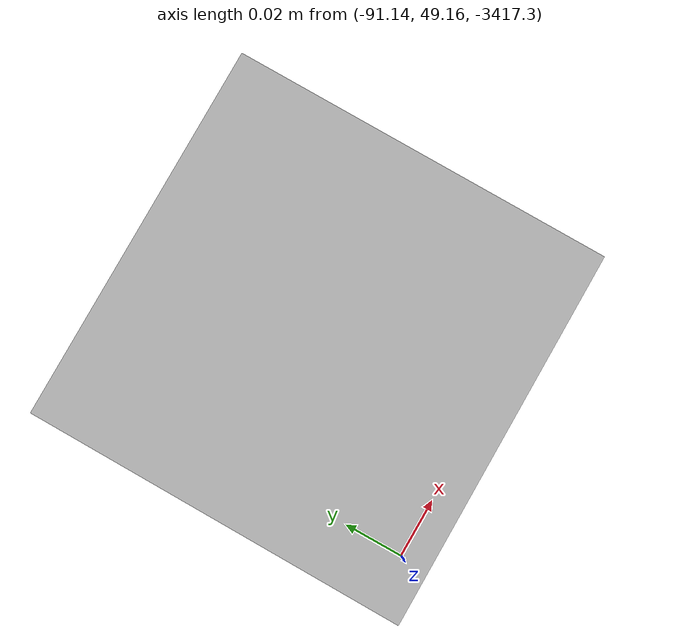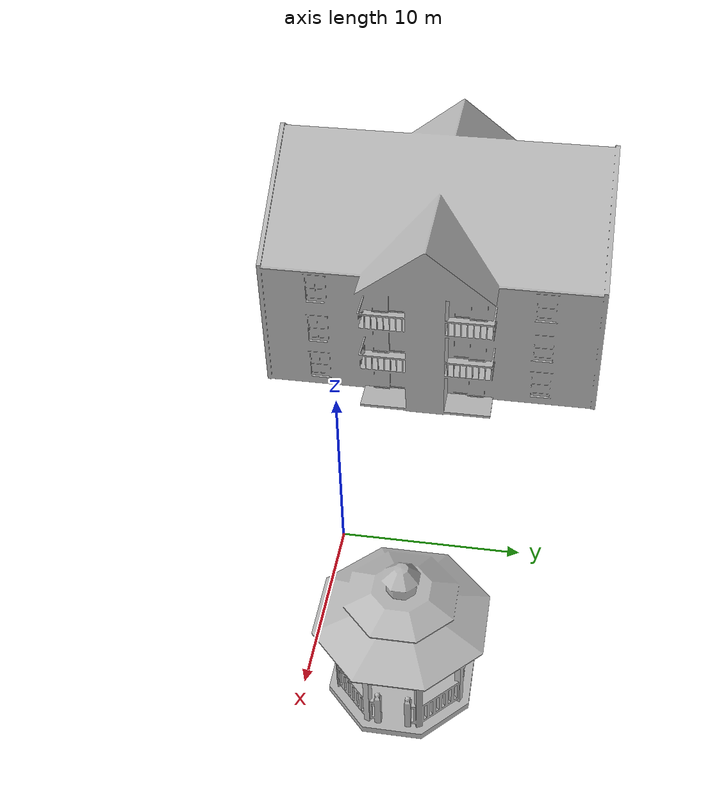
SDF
<sdf version="1.7">
 <world name="default">
  <light name="sun" type="directional">
   <pose>0 0 10 0 -0 0</pose>
   <diffuse>0.8 0.8 0.8 1</diffuse>
   <specular>0.2 0.2 0.2 1</specular>
   <attenuation>
    <range>1000</range>
    <constant>0.9</constant>
    <linear>0.01</linear>
    <quadratic>0.001</quadratic>
   </attenuation>
   <direction>-0.5 0.1 -0.9</direction>
   <spot><inner_angle>0</inner_angle><outer_angle>0</outer_angle><falloff>0</falloff></spot>
  </light>
  <gravity>0 0 -9.8</gravity>
  <magnetic_field>6e-06 2.3e-05 -4.2e-05</magnetic_field>
  <atmosphere type="adiabatic"/>
  <physics type="ode">
   <max_step_size>0.001</max_step_size>
   <real_time_factor>1</real_time_factor>
   <real_time_update_rate>1000</real_time_update_rate>
  </physics>
  <scene><ambient>0.4 0.4 0.4 1</ambient><background>0.7 0.7 0.7 1</background><shadows>1</shadows></scene>
  <audio><device>default</device></audio>
  <spherical_coordinates>
   <surface_model>EARTH_WGS84</surface_model>
   <latitude_deg>0</latitude_deg>
   <longitude_deg>0</longitude_deg>
   <elevation>0</elevation>
   <heading_deg>0</heading_deg>
  </spherical_coordinates>
  <light name="user_point_light_0" type="point">
   <pose>0.134631 -0.074047 1 0 -0 0</pose>
   <diffuse>0.5 0.5 0.5 1</diffuse>
   <specular>0.1 0.1 0.1 1</specular>
   <attenuation>
    <range>20</range>
    <constant>0.5</constant>
    <linear>0.01</linear>
    <quadratic>0.001</quadratic>
   </attenuation>
   <cast_shadows>0</cast_shadows>
   <direction>0 0 -1</direction>
  </light>
  <model name="gazebo">
   <static>1</static>
   <link name="link">
    <collision name="collision">
     <geometry><mesh><scale>3 3 2.5</scale><uri>model://gazebo/meshes/gazebo.dae</uri></mesh></geometry>
    </collision>
    <visual name="visual">
     <geometry><mesh><scale>3 3 2.5</scale><uri>model://gazebo/meshes/gazebo.dae</uri></mesh></geometry>
    </visual>
   </link>
   <pose>8.90563 4.81677 0 0 -0 0</pose>
  </model>
  <model name="stereocamera">
   <link name="link">
    <pose>0.05 0.05 0.05 0 -0 0</pose>
    <inertial>
     <mass>0.1</mass>
     <inertia>
      <ixx>0.000166667</ixx>
      <iyy>0.000166667</iyy>
      <izz>0.000166667</izz>
      <ixy>0</ixy>
      <ixz>0</ixz>
      <iyz>0</iyz>
     </inertia>
    </inertial>
    <collision name="collision"><geometry><box><size>0.1 0.1 0.1</size></box></geometry></collision>
    <visual name="visual"><geometry><box><size>0.1 0.1 0.1</size></box></geometry></visual>
    <sensor name="camera" type="multicamera">
     <always_on>1</always_on>
     <update_rate>30</update_rate>
     <visualize>0</visualize>
     <camera name="left">
      <pose>0 0.2 0 0 -0 0</pose>
      <horizontal_fov>1.047</horizontal_fov>
      <image><width>320</width><height>240</height></image>
      <clip><near>0.1</near><far>100</far></clip>
     </camera>
     <camera name="right">
      <pose>0 -0.2 0 0 -0 0</pose>
      <horizontal_fov>1.047</horizontal_fov>
      <image><width>320</width><height>240</height></image>
      <clip><near>0.1</near><far>100</far></clip>
     </camera>
    </sensor>
   </link>
   <pose>-91.1495 49.163 -3417.3 0 -0 0</pose>
  </model>
  <model name="apartment">
   <static>1</static>
   <link name="link">
    <collision name="collision">
     <geometry><mesh><uri>model://apartment/meshes/apartment.dae</uri></mesh></geometry>
    </collision>
    <visual name="visual">
     <geometry><mesh><uri>model://apartment/meshes/apartment.dae</uri></mesh></geometry>
    </visual>
   </link>
   <pose>-20.9547 3.06454 0 0 -0 0</pose>
  </model>
 </world>
</sdf>
